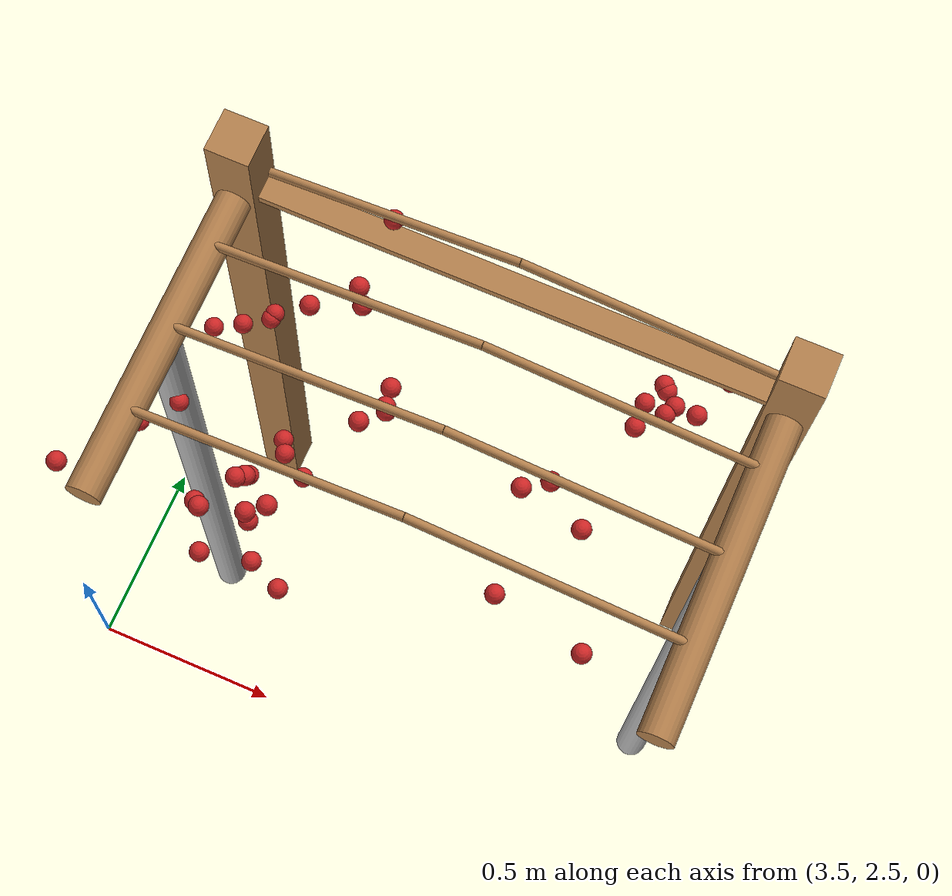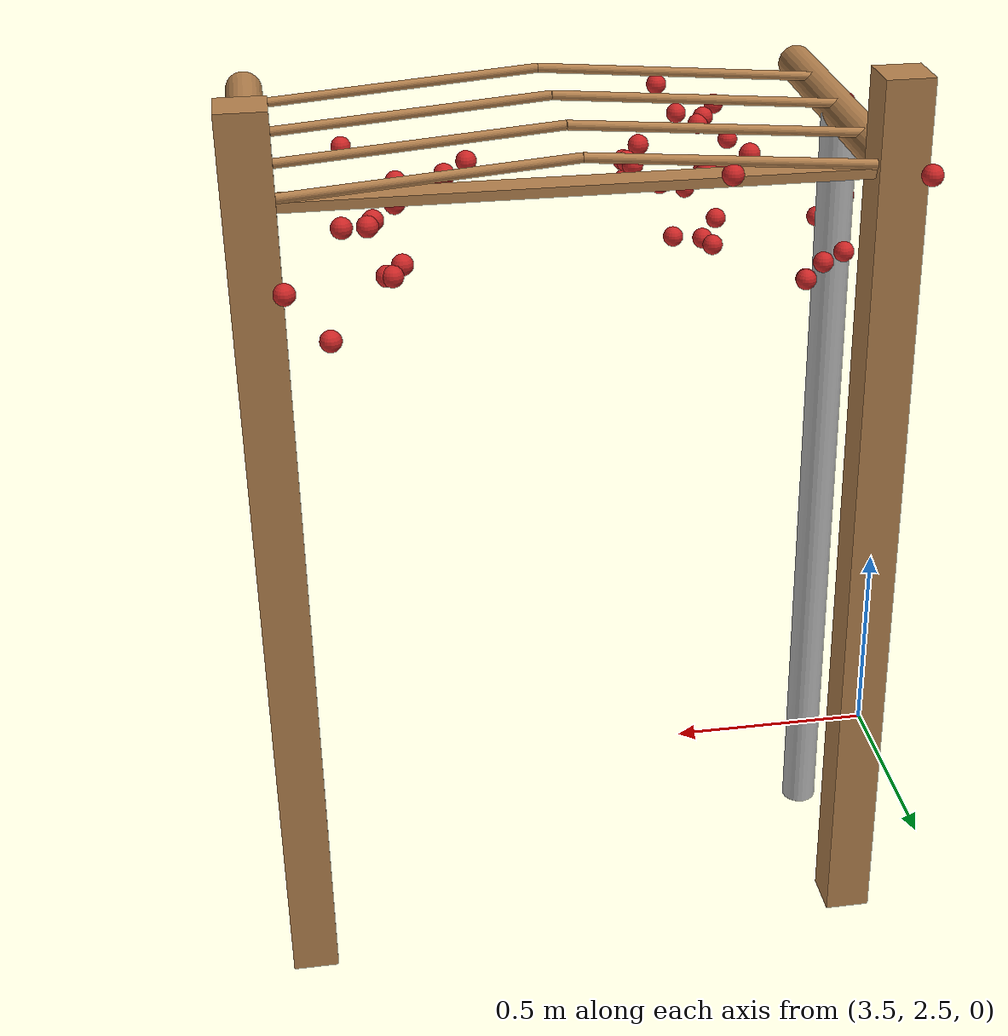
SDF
<sdf version="1.4">
 <model name="pergola">
  <include><name>post_25</name><pose>3.75 3.2 0 0 0 0</pose><uri>model://post</uri></include>
  <include><name>post_32</name><pose>5.0 3.2 0 0 0 0</pose><uri>model://post</uri></include>
  <link name="beam_25">
   <pose>4.375 3.2 1.81 0 0 0</pose>
   <collision name="collision"><geometry><box><size>1.25 0.06 0.02</size></box></geometry></collision>
   <visual name="visual">
    <geometry><box><size>1.25 0.06 0.02</size></box></geometry>
    <material><script><name>Gazebo/Wood</name></script></material>
   </visual>
   <inertial>
    <mass>5</mass>
    <inertia>
     <ixx>0.0016666666666666668</ixx>
     <ixy>0.0</ixy>
     <ixz>0.0</ixz>
     <iyy>0.6525416666666667</iyy>
     <iyz>0.0</iyz>
     <izz>0.6512083333333333</izz>
    </inertia>
   </inertial>
  </link>
  <include>
   <name>tree_21</name>
   <pose>3.75 2.8000000000000003 0 0 0 0</pose>
   <uri>model://tree_trunk</uri>
  </include>
  <include>
   <name>tree_27</name>
   <pose>5.0 2.8000000000000003 0 0 0 0</pose>
   <uri>model://tree_trunk</uri>
  </include>
  <link name="baseBranch_21">
   <pose>3.75 2.8000000000000003 1.8 1.5707963267948966 0 0</pose>
   <collision name="collision">
    <geometry><cylinder><radius>0.04</radius><length>0.74</length></cylinder></geometry>
   </collision>
   <visual name="visual">
    <geometry><cylinder><radius>0.04</radius><length>0.74</length></cylinder></geometry>
    <material><script><name>Gazebo/WoodFloor</name></script></material>
   </visual>
   <inertial>
    <mass>10</mass>
    <inertia>
     <ixx>0.4603333333333333</ixx>
     <ixy>0.0</ixy>
     <ixz>0.0</ixz>
     <iyy>0.4603333333333333</iyy>
     <iyz>0.0</iyz>
     <izz>0.008</izz>
    </inertia>
   </inertial>
  </link>
  <link name="baseBranch_27">
   <pose>5.0 2.8000000000000003 1.8 1.5707963267948966 0 0</pose>
   <collision name="collision">
    <geometry><cylinder><radius>0.04</radius><length>0.74</length></cylinder></geometry>
   </collision>
   <visual name="visual">
    <geometry><cylinder><radius>0.04</radius><length>0.74</length></cylinder></geometry>
    <material><script><name>Gazebo/WoodFloor</name></script></material>
   </visual>
   <inertial>
    <mass>10</mass>
    <inertia>
     <ixx>0.4603333333333333</ixx>
     <ixy>0.0</ixy>
     <ixz>0.0</ixz>
     <iyy>0.4603333333333333</iyy>
     <iyz>0.0</iyz>
     <izz>0.008</izz>
    </inertia>
   </inertial>
  </link>
  <link name="vine_170">
   <pose>4.0625 2.63 1.85 0 1.4909663410826592 0</pose>
   <collision name="collision">
    <geometry><cylinder><radius>0.01</radius><length>0.6269968101992226</length></cylinder></geometry>
   </collision>
   <visual name="visual">
    <geometry><cylinder><radius>0.01</radius><length>0.6269968101992226</length></cylinder></geometry>
    <material><script><name>Gazebo/WoodFloor</name></script></material>
   </visual>
   <inertial>
    <mass>5</mass>
    <inertia>
     <ixx>0.1639270833333333</ixx>
     <ixy>0.0</ixy>
     <ixz>0.0</ixz>
     <iyy>0.1639270833333333</iyy>
     <iyz>0.0</iyz>
     <izz>0.00025</izz>
    </inertia>
   </inertial>
  </link>
  <link name="vine_171">
   <pose>4.6875 2.63 1.85 0 -1.4909663410826592 0</pose>
   <collision name="collision">
    <geometry><cylinder><radius>0.01</radius><length>0.6269968101992226</length></cylinder></geometry>
   </collision>
   <visual name="visual">
    <geometry><cylinder><radius>0.01</radius><length>0.6269968101992226</length></cylinder></geometry>
    <material><script><name>Gazebo/WoodFloor</name></script></material>
   </visual>
   <inertial>
    <mass>5</mass>
    <inertia>
     <ixx>0.1639270833333333</ixx>
     <ixy>0.0</ixy>
     <ixz>0.0</ixz>
     <iyy>0.1639270833333333</iyy>
     <iyz>0.0</iyz>
     <izz>0.00025</izz>
    </inertia>
   </inertial>
  </link>
  <link name="vine_172">
   <pose>4.0625 2.83 1.85 0 1.4909663410826592 0</pose>
   <collision name="collision">
    <geometry><cylinder><radius>0.01</radius><length>0.6269968101992226</length></cylinder></geometry>
   </collision>
   <visual name="visual">
    <geometry><cylinder><radius>0.01</radius><length>0.6269968101992226</length></cylinder></geometry>
    <material><script><name>Gazebo/WoodFloor</name></script></material>
   </visual>
   <inertial>
    <mass>5</mass>
    <inertia>
     <ixx>0.1639270833333333</ixx>
     <ixy>0.0</ixy>
     <ixz>0.0</ixz>
     <iyy>0.1639270833333333</iyy>
     <iyz>0.0</iyz>
     <izz>0.00025</izz>
    </inertia>
   </inertial>
  </link>
  <link name="vine_173">
   <pose>4.6875 2.83 1.85 0 -1.4909663410826592 0</pose>
   <collision name="collision">
    <geometry><cylinder><radius>0.01</radius><length>0.6269968101992226</length></cylinder></geometry>
   </collision>
   <visual name="visual">
    <geometry><cylinder><radius>0.01</radius><length>0.6269968101992226</length></cylinder></geometry>
    <material><script><name>Gazebo/WoodFloor</name></script></material>
   </visual>
   <inertial>
    <mass>5</mass>
    <inertia>
     <ixx>0.1639270833333333</ixx>
     <ixy>0.0</ixy>
     <ixz>0.0</ixz>
     <iyy>0.1639270833333333</iyy>
     <iyz>0.0</iyz>
     <izz>0.00025</izz>
    </inertia>
   </inertial>
  </link>
  <link name="vine_174">
   <pose>4.0625 3.03 1.85 0 1.4909663410826592 0</pose>
   <collision name="collision">
    <geometry><cylinder><radius>0.01</radius><length>0.6269968101992226</length></cylinder></geometry>
   </collision>
   <visual name="visual">
    <geometry><cylinder><radius>0.01</radius><length>0.6269968101992226</length></cylinder></geometry>
    <material><script><name>Gazebo/WoodFloor</name></script></material>
   </visual>
   <inertial>
    <mass>5</mass>
    <inertia>
     <ixx>0.1639270833333333</ixx>
     <ixy>0.0</ixy>
     <ixz>0.0</ixz>
     <iyy>0.1639270833333333</iyy>
     <iyz>0.0</iyz>
     <izz>0.00025</izz>
    </inertia>
   </inertial>
  </link>
  <link name="vine_175">
   <pose>4.6875 3.03 1.85 0 -1.4909663410826592 0</pose>
   <collision name="collision">
    <geometry><cylinder><radius>0.01</radius><length>0.6269968101992226</length></cylinder></geometry>
   </collision>
   <visual name="visual">
    <geometry><cylinder><radius>0.01</radius><length>0.6269968101992226</length></cylinder></geometry>
    <material><script><name>Gazebo/WoodFloor</name></script></material>
   </visual>
   <inertial>
    <mass>5</mass>
    <inertia>
     <ixx>0.1639270833333333</ixx>
     <ixy>0.0</ixy>
     <ixz>0.0</ixz>
     <iyy>0.1639270833333333</iyy>
     <iyz>0.0</iyz>
     <izz>0.00025</izz>
    </inertia>
   </inertial>
  </link>
  <link name="vine_176">
   <pose>4.0625 3.23 1.85 0 1.4909663410826592 0</pose>
   <collision name="collision">
    <geometry><cylinder><radius>0.01</radius><length>0.6269968101992226</length></cylinder></geometry>
   </collision>
   <visual name="visual">
    <geometry><cylinder><radius>0.01</radius><length>0.6269968101992226</length></cylinder></geometry>
    <material><script><name>Gazebo/WoodFloor</name></script></material>
   </visual>
   <inertial>
    <mass>5</mass>
    <inertia>
     <ixx>0.1639270833333333</ixx>
     <ixy>0.0</ixy>
     <ixz>0.0</ixz>
     <iyy>0.1639270833333333</iyy>
     <iyz>0.0</iyz>
     <izz>0.00025</izz>
    </inertia>
   </inertial>
  </link>
  <link name="vine_177">
   <pose>4.6875 3.23 1.85 0 -1.4909663410826592 0</pose>
   <collision name="collision">
    <geometry><cylinder><radius>0.01</radius><length>0.6269968101992226</length></cylinder></geometry>
   </collision>
   <visual name="visual">
    <geometry><cylinder><radius>0.01</radius><length>0.6269968101992226</length></cylinder></geometry>
    <material><script><name>Gazebo/WoodFloor</name></script></material>
   </visual>
   <inertial>
    <mass>5</mass>
    <inertia>
     <ixx>0.1639270833333333</ixx>
     <ixy>0.0</ixy>
     <ixz>0.0</ixz>
     <iyy>0.1639270833333333</iyy>
     <iyz>0.0</iyz>
     <izz>0.00025</izz>
    </inertia>
   </inertial>
  </link>
  <link name="fruit_15">
   <pose>4.153974145615914 2.4647961014304403 1.5570192149199134 0 0 0</pose>
   <collision name="fruit_collision_15"><geometry><sphere><radius>0.022</radius></sphere></geometry></collision>
   <visual name="visual">
    <geometry><sphere><radius>0.022</radius></sphere></geometry>
    <material><script><name>Gazebo/Red</name></script></material>
   </visual>
   <inertial>
    <mass>0.05</mass>
    <inertia>
     <ixx>9.679999999999999e-06</ixx>
     <ixy>0.0</ixy>
     <ixz>0.0</ixz>
     <iyy>9.679999999999999e-06</iyy>
     <iyz>0.0</iyz>
     <izz>9.679999999999999e-06</izz>
    </inertia>
   </inertial>
   <sensor name="fruit_contact_15" type="contact">
    <plugin name="contact_plugin_15" filename="libcontact_plugin.so"/>
    <contact><collision>fruit_collision_15</collision><topic>fruit_contact_topic_15</topic></contact>
   </sensor>
  </link>
  <link name="fruit_16">
   <pose>4.947887285372615 3.2613518781214577 1.6508108001480943 0 0 0</pose>
   <collision name="fruit_collision_16"><geometry><sphere><radius>0.022</radius></sphere></geometry></collision>
   <visual name="visual">
    <geometry><sphere><radius>0.022</radius></sphere></geometry>
    <material><script><name>Gazebo/Red</name></script></material>
   </visual>
   <inertial>
    <mass>0.05</mass>
    <inertia>
     <ixx>9.679999999999999e-06</ixx>
     <ixy>0.0</ixy>
     <ixz>0.0</ixz>
     <iyy>9.679999999999999e-06</iyy>
     <iyz>0.0</iyz>
     <izz>9.679999999999999e-06</izz>
    </inertia>
   </inertial>
   <sensor name="fruit_contact_16" type="contact">
    <plugin name="contact_plugin_16" filename="libcontact_plugin.so"/>
    <contact><collision>fruit_collision_16</collision><topic>fruit_contact_topic_16</topic></contact>
   </sensor>
  </link>
  <link name="fruit_23">
   <pose>3.769958260053691 2.9566665008749893 1.5420966154425164 0 0 0</pose>
   <collision name="fruit_collision_23"><geometry><sphere><radius>0.022</radius></sphere></geometry></collision>
   <visual name="visual">
    <geometry><sphere><radius>0.022</radius></sphere></geometry>
    <material><script><name>Gazebo/Red</name></script></material>
   </visual>
   <inertial>
    <mass>0.05</mass>
    <inertia>
     <ixx>9.679999999999999e-06</ixx>
     <ixy>0.0</ixy>
     <ixz>0.0</ixz>
     <iyy>9.679999999999999e-06</iyy>
     <iyz>0.0</iyz>
     <izz>9.679999999999999e-06</izz>
    </inertia>
   </inertial>
   <sensor name="fruit_contact_23" type="contact">
    <plugin name="contact_plugin_23" filename="libcontact_plugin.so"/>
    <contact><collision>fruit_collision_23</collision><topic>fruit_contact_topic_23</topic></contact>
   </sensor>
  </link>
  <link name="fruit_47">
   <pose>4.085921867096613 3.2352788916900916 1.8261807245186623 0 0 0</pose>
   <collision name="fruit_collision_47"><geometry><sphere><radius>0.022</radius></sphere></geometry></collision>
   <visual name="visual">
    <geometry><sphere><radius>0.022</radius></sphere></geometry>
    <material><script><name>Gazebo/Red</name></script></material>
   </visual>
   <inertial>
    <mass>0.05</mass>
    <inertia>
     <ixx>9.679999999999999e-06</ixx>
     <ixy>0.0</ixy>
     <ixz>0.0</ixz>
     <iyy>9.679999999999999e-06</iyy>
     <iyz>0.0</iyz>
     <izz>9.679999999999999e-06</izz>
    </inertia>
   </inertial>
   <sensor name="fruit_contact_47" type="contact">
    <plugin name="contact_plugin_47" filename="libcontact_plugin.so"/>
    <contact><collision>fruit_collision_47</collision><topic>fruit_contact_topic_47</topic></contact>
   </sensor>
  </link>
  <link name="fruit_48">
   <pose>3.985060901359649 2.6782350594381543 1.5287078367764844 0 0 0</pose>
   <collision name="fruit_collision_48"><geometry><sphere><radius>0.022</radius></sphere></geometry></collision>
   <visual name="visual">
    <geometry><sphere><radius>0.022</radius></sphere></geometry>
    <material><script><name>Gazebo/Red</name></script></material>
   </visual>
   <inertial>
    <mass>0.05</mass>
    <inertia>
     <ixx>9.679999999999999e-06</ixx>
     <ixy>0.0</ixy>
     <ixz>0.0</ixz>
     <iyy>9.679999999999999e-06</iyy>
     <iyz>0.0</iyz>
     <izz>9.679999999999999e-06</izz>
    </inertia>
   </inertial>
   <sensor name="fruit_contact_48" type="contact">
    <plugin name="contact_plugin_48" filename="libcontact_plugin.so"/>
    <contact><collision>fruit_collision_48</collision><topic>fruit_contact_topic_48</topic></contact>
   </sensor>
  </link>
  <link name="fruit_63">
   <pose>4.190108826426233 2.8160257787695047 1.7543500716443443 0 0 0</pose>
   <collision name="fruit_collision_63"><geometry><sphere><radius>0.022</radius></sphere></geometry></collision>
   <visual name="visual">
    <geometry><sphere><radius>0.022</radius></sphere></geometry>
    <material><script><name>Gazebo/Red</name></script></material>
   </visual>
   <inertial>
    <mass>0.05</mass>
    <inertia>
     <ixx>9.679999999999999e-06</ixx>
     <ixy>0.0</ixy>
     <ixz>0.0</ixz>
     <iyy>9.679999999999999e-06</iyy>
     <iyz>0.0</iyz>
     <izz>9.679999999999999e-06</izz>
    </inertia>
   </inertial>
   <sensor name="fruit_contact_63" type="contact">
    <plugin name="contact_plugin_63" filename="libcontact_plugin.so"/>
    <contact><collision>fruit_collision_63</collision><topic>fruit_contact_topic_63</topic></contact>
   </sensor>
  </link>
  <link name="fruit_67">
   <pose>4.868306843552665 3.286692308941063 1.5609184338838362 0 0 0</pose>
   <collision name="fruit_collision_67"><geometry><sphere><radius>0.022</radius></sphere></geometry></collision>
   <visual name="visual">
    <geometry><sphere><radius>0.022</radius></sphere></geometry>
    <material><script><name>Gazebo/Red</name></script></material>
   </visual>
   <inertial>
    <mass>0.05</mass>
    <inertia>
     <ixx>9.679999999999999e-06</ixx>
     <ixy>0.0</ixy>
     <ixz>0.0</ixz>
     <iyy>9.679999999999999e-06</iyy>
     <iyz>0.0</iyz>
     <izz>9.679999999999999e-06</izz>
    </inertia>
   </inertial>
   <sensor name="fruit_contact_67" type="contact">
    <plugin name="contact_plugin_67" filename="libcontact_plugin.so"/>
    <contact><collision>fruit_collision_67</collision><topic>fruit_contact_topic_67</topic></contact>
   </sensor>
  </link>
  <link name="fruit_70">
   <pose>4.58550626388735 2.62021864893133 1.6304318869775793 0 0 0</pose>
   <collision name="fruit_collision_70"><geometry><sphere><radius>0.022</radius></sphere></geometry></collision>
   <visual name="visual">
    <geometry><sphere><radius>0.022</radius></sphere></geometry>
    <material><script><name>Gazebo/Red</name></script></material>
   </visual>
   <inertial>
    <mass>0.05</mass>
    <inertia>
     <ixx>9.679999999999999e-06</ixx>
     <ixy>0.0</ixy>
     <ixz>0.0</ixz>
     <iyy>9.679999999999999e-06</iyy>
     <iyz>0.0</iyz>
     <izz>9.679999999999999e-06</izz>
    </inertia>
   </inertial>
   <sensor name="fruit_contact_70" type="contact">
    <plugin name="contact_plugin_70" filename="libcontact_plugin.so"/>
    <contact><collision>fruit_collision_70</collision><topic>fruit_contact_topic_70</topic></contact>
   </sensor>
  </link>
  <link name="fruit_75">
   <pose>4.800823491438611 2.557985805155685 1.7004761122574377 0 0 0</pose>
   <collision name="fruit_collision_75"><geometry><sphere><radius>0.022</radius></sphere></geometry></collision>
   <visual name="visual">
    <geometry><sphere><radius>0.022</radius></sphere></geometry>
    <material><script><name>Gazebo/Red</name></script></material>
   </visual>
   <inertial>
    <mass>0.05</mass>
    <inertia>
     <ixx>9.679999999999999e-06</ixx>
     <ixy>0.0</ixy>
     <ixz>0.0</ixz>
     <iyy>9.679999999999999e-06</iyy>
     <iyz>0.0</iyz>
     <izz>9.679999999999999e-06</izz>
    </inertia>
   </inertial>
   <sensor name="fruit_contact_75" type="contact">
    <plugin name="contact_plugin_75" filename="libcontact_plugin.so"/>
    <contact><collision>fruit_collision_75</collision><topic>fruit_contact_topic_75</topic></contact>
   </sensor>
  </link>
  <link name="fruit_96">
   <pose>3.6973379364168073 3.2621637504035226 1.8113002603726003 0 0 0</pose>
   <collision name="fruit_collision_96"><geometry><sphere><radius>0.022</radius></sphere></geometry></collision>
   <visual name="visual">
    <geometry><sphere><radius>0.022</radius></sphere></geometry>
    <material><script><name>Gazebo/Red</name></script></material>
   </visual>
   <inertial>
    <mass>0.05</mass>
    <inertia>
     <ixx>9.679999999999999e-06</ixx>
     <ixy>0.0</ixy>
     <ixz>0.0</ixz>
     <iyy>9.679999999999999e-06</iyy>
     <iyz>0.0</iyz>
     <izz>9.679999999999999e-06</izz>
    </inertia>
   </inertial>
   <sensor name="fruit_contact_96" type="contact">
    <plugin name="contact_plugin_96" filename="libcontact_plugin.so"/>
    <contact><collision>fruit_collision_96</collision><topic>fruit_contact_topic_96</topic></contact>
   </sensor>
  </link>
  <link name="fruit_98">
   <pose>3.8241386000695328 2.9917727721439977 1.5356091872130102 0 0 0</pose>
   <collision name="fruit_collision_98"><geometry><sphere><radius>0.022</radius></sphere></geometry></collision>
   <visual name="visual">
    <geometry><sphere><radius>0.022</radius></sphere></geometry>
    <material><script><name>Gazebo/Red</name></script></material>
   </visual>
   <inertial>
    <mass>0.05</mass>
    <inertia>
     <ixx>9.679999999999999e-06</ixx>
     <ixy>0.0</ixy>
     <ixz>0.0</ixz>
     <iyy>9.679999999999999e-06</iyy>
     <iyz>0.0</iyz>
     <izz>9.679999999999999e-06</izz>
    </inertia>
   </inertial>
   <sensor name="fruit_contact_98" type="contact">
    <plugin name="contact_plugin_98" filename="libcontact_plugin.so"/>
    <contact><collision>fruit_collision_98</collision><topic>fruit_contact_topic_98</topic></contact>
   </sensor>
  </link>
  <link name="fruit_162">
   <pose>3.931914363310737 2.5449849307775714 1.6654063256373155 0 0 0</pose>
   <collision name="fruit_collision_162"><geometry><sphere><radius>0.022</radius></sphere></geometry></collision>
   <visual name="visual">
    <geometry><sphere><radius>0.022</radius></sphere></geometry>
    <material><script><name>Gazebo/Red</name></script></material>
   </visual>
   <inertial>
    <mass>0.05</mass>
    <inertia>
     <ixx>9.679999999999999e-06</ixx>
     <ixy>0.0</ixy>
     <ixz>0.0</ixz>
     <iyy>9.679999999999999e-06</iyy>
     <iyz>0.0</iyz>
     <izz>9.679999999999999e-06</izz>
    </inertia>
   </inertial>
   <sensor name="fruit_contact_162" type="contact">
    <plugin name="contact_plugin_162" filename="libcontact_plugin.so"/>
    <contact><collision>fruit_collision_162</collision><topic>fruit_contact_topic_162</topic></contact>
   </sensor>
  </link>
  <link name="fruit_188">
   <pose>3.9612563971222565 2.519337247793989 1.74103178864471 0 0 0</pose>
   <collision name="fruit_collision_188"><geometry><sphere><radius>0.022</radius></sphere></geometry></collision>
   <visual name="visual">
    <geometry><sphere><radius>0.022</radius></sphere></geometry>
    <material><script><name>Gazebo/Red</name></script></material>
   </visual>
   <inertial>
    <mass>0.05</mass>
    <inertia>
     <ixx>9.679999999999999e-06</ixx>
     <ixy>0.0</ixy>
     <ixz>0.0</ixz>
     <iyy>9.679999999999999e-06</iyy>
     <iyz>0.0</iyz>
     <izz>9.679999999999999e-06</izz>
    </inertia>
   </inertial>
   <sensor name="fruit_contact_188" type="contact">
    <plugin name="contact_plugin_188" filename="libcontact_plugin.so"/>
    <contact><collision>fruit_collision_188</collision><topic>fruit_contact_topic_188</topic></contact>
   </sensor>
  </link>
  <link name="fruit_198">
   <pose>3.683732443808809 2.6589103648153545 1.5562919224913643 0 0 0</pose>
   <collision name="fruit_collision_198"><geometry><sphere><radius>0.022</radius></sphere></geometry></collision>
   <visual name="visual">
    <geometry><sphere><radius>0.022</radius></sphere></geometry>
    <material><script><name>Gazebo/Red</name></script></material>
   </visual>
   <inertial>
    <mass>0.05</mass>
    <inertia>
     <ixx>9.679999999999999e-06</ixx>
     <ixy>0.0</ixy>
     <ixz>0.0</ixz>
     <iyy>9.679999999999999e-06</iyy>
     <iyz>0.0</iyz>
     <izz>9.679999999999999e-06</izz>
    </inertia>
   </inertial>
   <sensor name="fruit_contact_198" type="contact">
    <plugin name="contact_plugin_198" filename="libcontact_plugin.so"/>
    <contact><collision>fruit_collision_198</collision><topic>fruit_contact_topic_198</topic></contact>
   </sensor>
  </link>
  <link name="fruit_227">
   <pose>4.716393779764636 3.1344962548093145 1.6453579416973239 0 0 0</pose>
   <collision name="fruit_collision_227"><geometry><sphere><radius>0.022</radius></sphere></geometry></collision>
   <visual name="visual">
    <geometry><sphere><radius>0.022</radius></sphere></geometry>
    <material><script><name>Gazebo/Red</name></script></material>
   </visual>
   <inertial>
    <mass>0.05</mass>
    <inertia>
     <ixx>9.679999999999999e-06</ixx>
     <ixy>0.0</ixy>
     <ixz>0.0</ixz>
     <iyy>9.679999999999999e-06</iyy>
     <iyz>0.0</iyz>
     <izz>9.679999999999999e-06</izz>
    </inertia>
   </inertial>
   <sensor name="fruit_contact_227" type="contact">
    <plugin name="contact_plugin_227" filename="libcontact_plugin.so"/>
    <contact><collision>fruit_collision_227</collision><topic>fruit_contact_topic_227</topic></contact>
   </sensor>
  </link>
  <link name="fruit_239">
   <pose>3.9952924113561403 3.0012560667845882 1.7850177441098132 0 0 0</pose>
   <collision name="fruit_collision_239"><geometry><sphere><radius>0.022</radius></sphere></geometry></collision>
   <visual name="visual">
    <geometry><sphere><radius>0.022</radius></sphere></geometry>
    <material><script><name>Gazebo/Red</name></script></material>
   </visual>
   <inertial>
    <mass>0.05</mass>
    <inertia>
     <ixx>9.679999999999999e-06</ixx>
     <ixy>0.0</ixy>
     <ixz>0.0</ixz>
     <iyy>9.679999999999999e-06</iyy>
     <iyz>0.0</iyz>
     <izz>9.679999999999999e-06</izz>
    </inertia>
   </inertial>
   <sensor name="fruit_contact_239" type="contact">
    <plugin name="contact_plugin_239" filename="libcontact_plugin.so"/>
    <contact><collision>fruit_collision_239</collision><topic>fruit_contact_topic_239</topic></contact>
   </sensor>
  </link>
  <link name="fruit_245">
   <pose>3.969435417967767 2.46830315471261 1.5725275727010544 0 0 0</pose>
   <collision name="fruit_collision_245"><geometry><sphere><radius>0.022</radius></sphere></geometry></collision>
   <visual name="visual">
    <geometry><sphere><radius>0.022</radius></sphere></geometry>
    <material><script><name>Gazebo/Red</name></script></material>
   </visual>
   <inertial>
    <mass>0.05</mass>
    <inertia>
     <ixx>9.679999999999999e-06</ixx>
     <ixy>0.0</ixy>
     <ixz>0.0</ixz>
     <iyy>9.679999999999999e-06</iyy>
     <iyz>0.0</iyz>
     <izz>9.679999999999999e-06</izz>
    </inertia>
   </inertial>
   <sensor name="fruit_contact_245" type="contact">
    <plugin name="contact_plugin_245" filename="libcontact_plugin.so"/>
    <contact><collision>fruit_collision_245</collision><topic>fruit_contact_topic_245</topic></contact>
   </sensor>
  </link>
  <link name="fruit_273">
   <pose>4.554369738975261 2.82251186003027 1.7421414165626377 0 0 0</pose>
   <collision name="fruit_collision_273"><geometry><sphere><radius>0.022</radius></sphere></geometry></collision>
   <visual name="visual">
    <geometry><sphere><radius>0.022</radius></sphere></geometry>
    <material><script><name>Gazebo/Red</name></script></material>
   </visual>
   <inertial>
    <mass>0.05</mass>
    <inertia>
     <ixx>9.679999999999999e-06</ixx>
     <ixy>0.0</ixy>
     <ixz>0.0</ixz>
     <iyy>9.679999999999999e-06</iyy>
     <iyz>0.0</iyz>
     <izz>9.679999999999999e-06</izz>
    </inertia>
   </inertial>
   <sensor name="fruit_contact_273" type="contact">
    <plugin name="contact_plugin_273" filename="libcontact_plugin.so"/>
    <contact><collision>fruit_collision_273</collision><topic>fruit_contact_topic_273</topic></contact>
   </sensor>
  </link>
  <link name="fruit_296">
   <pose>4.7199410814098925 3.0416464564919443 1.7383686406291539 0 0 0</pose>
   <collision name="fruit_collision_296"><geometry><sphere><radius>0.022</radius></sphere></geometry></collision>
   <visual name="visual">
    <geometry><sphere><radius>0.022</radius></sphere></geometry>
    <material><script><name>Gazebo/Red</name></script></material>
   </visual>
   <inertial>
    <mass>0.05</mass>
    <inertia>
     <ixx>9.679999999999999e-06</ixx>
     <ixy>0.0</ixy>
     <ixz>0.0</ixz>
     <iyy>9.679999999999999e-06</iyy>
     <iyz>0.0</iyz>
     <izz>9.679999999999999e-06</izz>
    </inertia>
   </inertial>
   <sensor name="fruit_contact_296" type="contact">
    <plugin name="contact_plugin_296" filename="libcontact_plugin.so"/>
    <contact><collision>fruit_collision_296</collision><topic>fruit_contact_topic_296</topic></contact>
   </sensor>
  </link>
  <link name="fruit_340">
   <pose>4.701112882772964 2.801730604721148 1.6999907996101233 0 0 0</pose>
   <collision name="fruit_collision_340"><geometry><sphere><radius>0.022</radius></sphere></geometry></collision>
   <visual name="visual">
    <geometry><sphere><radius>0.022</radius></sphere></geometry>
    <material><script><name>Gazebo/Red</name></script></material>
   </visual>
   <inertial>
    <mass>0.05</mass>
    <inertia>
     <ixx>9.679999999999999e-06</ixx>
     <ixy>0.0</ixy>
     <ixz>0.0</ixz>
     <iyy>9.679999999999999e-06</iyy>
     <iyz>0.0</iyz>
     <izz>9.679999999999999e-06</izz>
    </inertia>
   </inertial>
   <sensor name="fruit_contact_340" type="contact">
    <plugin name="contact_plugin_340" filename="libcontact_plugin.so"/>
    <contact><collision>fruit_collision_340</collision><topic>fruit_contact_topic_340</topic></contact>
   </sensor>
  </link>
  <link name="fruit_353">
   <pose>4.739784273173576 3.18977635105312 1.6445325759214748 0 0 0</pose>
   <collision name="fruit_collision_353"><geometry><sphere><radius>0.022</radius></sphere></geometry></collision>
   <visual name="visual">
    <geometry><sphere><radius>0.022</radius></sphere></geometry>
    <material><script><name>Gazebo/Red</name></script></material>
   </visual>
   <inertial>
    <mass>0.05</mass>
    <inertia>
     <ixx>9.679999999999999e-06</ixx>
     <ixy>0.0</ixy>
     <ixz>0.0</ixz>
     <iyy>9.679999999999999e-06</iyy>
     <iyz>0.0</iyz>
     <izz>9.679999999999999e-06</izz>
    </inertia>
   </inertial>
   <sensor name="fruit_contact_353" type="contact">
    <plugin name="contact_plugin_353" filename="libcontact_plugin.so"/>
    <contact><collision>fruit_collision_353</collision><topic>fruit_contact_topic_353</topic></contact>
   </sensor>
  </link>
  <link name="fruit_354">
   <pose>4.779314192577805 3.122582182788103 1.7234816379467466 0 0 0</pose>
   <collision name="fruit_collision_354"><geometry><sphere><radius>0.022</radius></sphere></geometry></collision>
   <visual name="visual">
    <geometry><sphere><radius>0.022</radius></sphere></geometry>
    <material><script><name>Gazebo/Red</name></script></material>
   </visual>
   <inertial>
    <mass>0.05</mass>
    <inertia>
     <ixx>9.679999999999999e-06</ixx>
     <ixy>0.0</ixy>
     <ixz>0.0</ixz>
     <iyy>9.679999999999999e-06</iyy>
     <iyz>0.0</iyz>
     <izz>9.679999999999999e-06</izz>
    </inertia>
   </inertial>
   <sensor name="fruit_contact_354" type="contact">
    <plugin name="contact_plugin_354" filename="libcontact_plugin.so"/>
    <contact><collision>fruit_collision_354</collision><topic>fruit_contact_topic_354</topic></contact>
   </sensor>
  </link>
  <link name="fruit_358">
   <pose>4.220003837778253 2.914131432692346 1.7451699218979917 0 0 0</pose>
   <collision name="fruit_collision_358"><geometry><sphere><radius>0.022</radius></sphere></geometry></collision>
   <visual name="visual">
    <geometry><sphere><radius>0.022</radius></sphere></geometry>
    <material><script><name>Gazebo/Red</name></script></material>
   </visual>
   <inertial>
    <mass>0.05</mass>
    <inertia>
     <ixx>9.679999999999999e-06</ixx>
     <ixy>0.0</ixy>
     <ixz>0.0</ixz>
     <iyy>9.679999999999999e-06</iyy>
     <iyz>0.0</iyz>
     <izz>9.679999999999999e-06</izz>
    </inertia>
   </inertial>
   <sensor name="fruit_contact_358" type="contact">
    <plugin name="contact_plugin_358" filename="libcontact_plugin.so"/>
    <contact><collision>fruit_collision_358</collision><topic>fruit_contact_topic_358</topic></contact>
   </sensor>
  </link>
  <link name="fruit_368">
   <pose>4.004529207631626 2.606921927791891 1.7401367360210809 0 0 0</pose>
   <collision name="fruit_collision_368"><geometry><sphere><radius>0.022</radius></sphere></geometry></collision>
   <visual name="visual">
    <geometry><sphere><radius>0.022</radius></sphere></geometry>
    <material><script><name>Gazebo/Red</name></script></material>
   </visual>
   <inertial>
    <mass>0.05</mass>
    <inertia>
     <ixx>9.679999999999999e-06</ixx>
     <ixy>0.0</ixy>
     <ixz>0.0</ixz>
     <iyy>9.679999999999999e-06</iyy>
     <iyz>0.0</iyz>
     <izz>9.679999999999999e-06</izz>
    </inertia>
   </inertial>
   <sensor name="fruit_contact_368" type="contact">
    <plugin name="contact_plugin_368" filename="libcontact_plugin.so"/>
    <contact><collision>fruit_collision_368</collision><topic>fruit_contact_topic_368</topic></contact>
   </sensor>
  </link>
  <link name="fruit_387">
   <pose>4.829339754421172 3.122436184145361 1.7235217078728478 0 0 0</pose>
   <collision name="fruit_collision_387"><geometry><sphere><radius>0.022</radius></sphere></geometry></collision>
   <visual name="visual">
    <geometry><sphere><radius>0.022</radius></sphere></geometry>
    <material><script><name>Gazebo/Red</name></script></material>
   </visual>
   <inertial>
    <mass>0.05</mass>
    <inertia>
     <ixx>9.679999999999999e-06</ixx>
     <ixy>0.0</ixy>
     <ixz>0.0</ixz>
     <iyy>9.679999999999999e-06</iyy>
     <iyz>0.0</iyz>
     <izz>9.679999999999999e-06</izz>
    </inertia>
   </inertial>
   <sensor name="fruit_contact_387" type="contact">
    <plugin name="contact_plugin_387" filename="libcontact_plugin.so"/>
    <contact><collision>fruit_collision_387</collision><topic>fruit_contact_topic_387</topic></contact>
   </sensor>
  </link>
  <link name="fruit_415">
   <pose>4.018790662514093 2.6206342233241946 1.7295280818400607 0 0 0</pose>
   <collision name="fruit_collision_415"><geometry><sphere><radius>0.022</radius></sphere></geometry></collision>
   <visual name="visual">
    <geometry><sphere><radius>0.022</radius></sphere></geometry>
    <material><script><name>Gazebo/Red</name></script></material>
   </visual>
   <inertial>
    <mass>0.05</mass>
    <inertia>
     <ixx>9.679999999999999e-06</ixx>
     <ixy>0.0</ixy>
     <ixz>0.0</ixz>
     <iyy>9.679999999999999e-06</iyy>
     <iyz>0.0</iyz>
     <izz>9.679999999999999e-06</izz>
    </inertia>
   </inertial>
   <sensor name="fruit_contact_415" type="contact">
    <plugin name="contact_plugin_415" filename="libcontact_plugin.so"/>
    <contact><collision>fruit_collision_415</collision><topic>fruit_contact_topic_415</topic></contact>
   </sensor>
  </link>
  <link name="fruit_430">
   <pose>4.034483739622351 2.574126766542938 1.5658274859671852 0 0 0</pose>
   <collision name="fruit_collision_430"><geometry><sphere><radius>0.022</radius></sphere></geometry></collision>
   <visual name="visual">
    <geometry><sphere><radius>0.022</radius></sphere></geometry>
    <material><script><name>Gazebo/Red</name></script></material>
   </visual>
   <inertial>
    <mass>0.05</mass>
    <inertia>
     <ixx>9.679999999999999e-06</ixx>
     <ixy>0.0</ixy>
     <ixz>0.0</ixz>
     <iyy>9.679999999999999e-06</iyy>
     <iyz>0.0</iyz>
     <izz>9.679999999999999e-06</izz>
    </inertia>
   </inertial>
   <sensor name="fruit_contact_430" type="contact">
    <plugin name="contact_plugin_430" filename="libcontact_plugin.so"/>
    <contact><collision>fruit_collision_430</collision><topic>fruit_contact_topic_430</topic></contact>
   </sensor>
  </link>
  <link name="fruit_439">
   <pose>4.750005270298141 3.180243937792153 1.6423983651773988 0 0 0</pose>
   <collision name="fruit_collision_439"><geometry><sphere><radius>0.022</radius></sphere></geometry></collision>
   <visual name="visual">
    <geometry><sphere><radius>0.022</radius></sphere></geometry>
    <material><script><name>Gazebo/Red</name></script></material>
   </visual>
   <inertial>
    <mass>0.05</mass>
    <inertia>
     <ixx>9.679999999999999e-06</ixx>
     <ixy>0.0</ixy>
     <ixz>0.0</ixz>
     <iyy>9.679999999999999e-06</iyy>
     <iyz>0.0</iyz>
     <izz>9.679999999999999e-06</izz>
    </inertia>
   </inertial>
   <sensor name="fruit_contact_439" type="contact">
    <plugin name="contact_plugin_439" filename="libcontact_plugin.so"/>
    <contact><collision>fruit_collision_439</collision><topic>fruit_contact_topic_439</topic></contact>
   </sensor>
  </link>
  <link name="fruit_461">
   <pose>3.7778410881408413 2.7640639286841604 1.5515424133007198 0 0 0</pose>
   <collision name="fruit_collision_461"><geometry><sphere><radius>0.022</radius></sphere></geometry></collision>
   <visual name="visual">
    <geometry><sphere><radius>0.022</radius></sphere></geometry>
    <material><script><name>Gazebo/Red</name></script></material>
   </visual>
   <inertial>
    <mass>0.05</mass>
    <inertia>
     <ixx>9.679999999999999e-06</ixx>
     <ixy>0.0</ixy>
     <ixz>0.0</ixz>
     <iyy>9.679999999999999e-06</iyy>
     <iyz>0.0</iyz>
     <izz>9.679999999999999e-06</izz>
    </inertia>
   </inertial>
   <sensor name="fruit_contact_461" type="contact">
    <plugin name="contact_plugin_461" filename="libcontact_plugin.so"/>
    <contact><collision>fruit_collision_461</collision><topic>fruit_contact_topic_461</topic></contact>
   </sensor>
  </link>
  <link name="fruit_487">
   <pose>4.032871970316901 2.75807166855317 1.51460825940099 0 0 0</pose>
   <collision name="fruit_collision_487"><geometry><sphere><radius>0.022</radius></sphere></geometry></collision>
   <visual name="visual">
    <geometry><sphere><radius>0.022</radius></sphere></geometry>
    <material><script><name>Gazebo/Red</name></script></material>
   </visual>
   <inertial>
    <mass>0.05</mass>
    <inertia>
     <ixx>9.679999999999999e-06</ixx>
     <ixy>0.0</ixy>
     <ixz>0.0</ixz>
     <iyy>9.679999999999999e-06</iyy>
     <iyz>0.0</iyz>
     <izz>9.679999999999999e-06</izz>
    </inertia>
   </inertial>
   <sensor name="fruit_contact_487" type="contact">
    <plugin name="contact_plugin_487" filename="libcontact_plugin.so"/>
    <contact><collision>fruit_collision_487</collision><topic>fruit_contact_topic_487</topic></contact>
   </sensor>
  </link>
  <link name="fruit_488">
   <pose>4.230951788879687 2.864519417151971 1.7399447456980959 0 0 0</pose>
   <collision name="fruit_collision_488"><geometry><sphere><radius>0.022</radius></sphere></geometry></collision>
   <visual name="visual">
    <geometry><sphere><radius>0.022</radius></sphere></geometry>
    <material><script><name>Gazebo/Red</name></script></material>
   </visual>
   <inertial>
    <mass>0.05</mass>
    <inertia>
     <ixx>9.679999999999999e-06</ixx>
     <ixy>0.0</ixy>
     <ixz>0.0</ixz>
     <iyy>9.679999999999999e-06</iyy>
     <iyz>0.0</iyz>
     <izz>9.679999999999999e-06</izz>
    </inertia>
   </inertial>
   <sensor name="fruit_contact_488" type="contact">
    <plugin name="contact_plugin_488" filename="libcontact_plugin.so"/>
    <contact><collision>fruit_collision_488</collision><topic>fruit_contact_topic_488</topic></contact>
   </sensor>
  </link>
  <link name="fruit_492">
   <pose>4.0915838218167195 2.7257215295139017 1.509791194836342 0 0 0</pose>
   <collision name="fruit_collision_492"><geometry><sphere><radius>0.022</radius></sphere></geometry></collision>
   <visual name="visual">
    <geometry><sphere><radius>0.022</radius></sphere></geometry>
    <material><script><name>Gazebo/Red</name></script></material>
   </visual>
   <inertial>
    <mass>0.05</mass>
    <inertia>
     <ixx>9.679999999999999e-06</ixx>
     <ixy>0.0</ixy>
     <ixz>0.0</ixz>
     <iyy>9.679999999999999e-06</iyy>
     <iyz>0.0</iyz>
     <izz>9.679999999999999e-06</izz>
    </inertia>
   </inertial>
   <sensor name="fruit_contact_492" type="contact">
    <plugin name="contact_plugin_492" filename="libcontact_plugin.so"/>
    <contact><collision>fruit_collision_492</collision><topic>fruit_contact_topic_492</topic></contact>
   </sensor>
  </link>
  <link name="fruit_565">
   <pose>4.076190237548796 2.498861832363519 1.550618422265426 0 0 0</pose>
   <collision name="fruit_collision_565"><geometry><sphere><radius>0.022</radius></sphere></geometry></collision>
   <visual name="visual">
    <geometry><sphere><radius>0.022</radius></sphere></geometry>
    <material><script><name>Gazebo/Red</name></script></material>
   </visual>
   <inertial>
    <mass>0.05</mass>
    <inertia>
     <ixx>9.679999999999999e-06</ixx>
     <ixy>0.0</ixy>
     <ixz>0.0</ixz>
     <iyy>9.679999999999999e-06</iyy>
     <iyz>0.0</iyz>
     <izz>9.679999999999999e-06</izz>
    </inertia>
   </inertial>
   <sensor name="fruit_contact_565" type="contact">
    <plugin name="contact_plugin_565" filename="libcontact_plugin.so"/>
    <contact><collision>fruit_collision_565</collision><topic>fruit_contact_topic_565</topic></contact>
   </sensor>
  </link>
  <link name="fruit_566">
   <pose>4.226020976809615 2.873248215606236 1.7406983200501502 0 0 0</pose>
   <collision name="fruit_collision_566"><geometry><sphere><radius>0.022</radius></sphere></geometry></collision>
   <visual name="visual">
    <geometry><sphere><radius>0.022</radius></sphere></geometry>
    <material><script><name>Gazebo/Red</name></script></material>
   </visual>
   <inertial>
    <mass>0.05</mass>
    <inertia>
     <ixx>9.679999999999999e-06</ixx>
     <ixy>0.0</ixy>
     <ixz>0.0</ixz>
     <iyy>9.679999999999999e-06</iyy>
     <iyz>0.0</iyz>
     <izz>9.679999999999999e-06</izz>
    </inertia>
   </inertial>
   <sensor name="fruit_contact_566" type="contact">
    <plugin name="contact_plugin_566" filename="libcontact_plugin.so"/>
    <contact><collision>fruit_collision_566</collision><topic>fruit_contact_topic_566</topic></contact>
   </sensor>
  </link>
  <link name="fruit_582">
   <pose>4.052792508368088 2.548435516927356 1.733095211881328 0 0 0</pose>
   <collision name="fruit_collision_582"><geometry><sphere><radius>0.022</radius></sphere></geometry></collision>
   <visual name="visual">
    <geometry><sphere><radius>0.022</radius></sphere></geometry>
    <material><script><name>Gazebo/Red</name></script></material>
   </visual>
   <inertial>
    <mass>0.05</mass>
    <inertia>
     <ixx>9.679999999999999e-06</ixx>
     <ixy>0.0</ixy>
     <ixz>0.0</ixz>
     <iyy>9.679999999999999e-06</iyy>
     <iyz>0.0</iyz>
     <izz>9.679999999999999e-06</izz>
    </inertia>
   </inertial>
   <sensor name="fruit_contact_582" type="contact">
    <plugin name="contact_plugin_582" filename="libcontact_plugin.so"/>
    <contact><collision>fruit_collision_582</collision><topic>fruit_contact_topic_582</topic></contact>
   </sensor>
  </link>
  <link name="fruit_621">
   <pose>4.07146603703774 3.0861175833229946 1.7727565191428585 0 0 0</pose>
   <collision name="fruit_collision_621"><geometry><sphere><radius>0.022</radius></sphere></geometry></collision>
   <visual name="visual">
    <geometry><sphere><radius>0.022</radius></sphere></geometry>
    <material><script><name>Gazebo/Red</name></script></material>
   </visual>
   <inertial>
    <mass>0.05</mass>
    <inertia>
     <ixx>9.679999999999999e-06</ixx>
     <ixy>0.0</ixy>
     <ixz>0.0</ixz>
     <iyy>9.679999999999999e-06</iyy>
     <iyz>0.0</iyz>
     <izz>9.679999999999999e-06</izz>
    </inertia>
   </inertial>
   <sensor name="fruit_contact_621" type="contact">
    <plugin name="contact_plugin_621" filename="libcontact_plugin.so"/>
    <contact><collision>fruit_collision_621</collision><topic>fruit_contact_topic_621</topic></contact>
   </sensor>
  </link>
  <link name="fruit_624">
   <pose>4.01629175414755 2.7876960547450453 1.5095190482208511 0 0 0</pose>
   <collision name="fruit_collision_624"><geometry><sphere><radius>0.022</radius></sphere></geometry></collision>
   <visual name="visual">
    <geometry><sphere><radius>0.022</radius></sphere></geometry>
    <material><script><name>Gazebo/Red</name></script></material>
   </visual>
   <inertial>
    <mass>0.05</mass>
    <inertia>
     <ixx>9.679999999999999e-06</ixx>
     <ixy>0.0</ixy>
     <ixz>0.0</ixz>
     <iyy>9.679999999999999e-06</iyy>
     <iyz>0.0</iyz>
     <izz>9.679999999999999e-06</izz>
    </inertia>
   </inertial>
   <sensor name="fruit_contact_624" type="contact">
    <plugin name="contact_plugin_624" filename="libcontact_plugin.so"/>
    <contact><collision>fruit_collision_624</collision><topic>fruit_contact_topic_624</topic></contact>
   </sensor>
  </link>
  <link name="fruit_675">
   <pose>3.643913891325936 2.4936337727842437 1.7215815421711653 0 0 0</pose>
   <collision name="fruit_collision_675"><geometry><sphere><radius>0.022</radius></sphere></geometry></collision>
   <visual name="visual">
    <geometry><sphere><radius>0.022</radius></sphere></geometry>
    <material><script><name>Gazebo/Red</name></script></material>
   </visual>
   <inertial>
    <mass>0.05</mass>
    <inertia>
     <ixx>9.679999999999999e-06</ixx>
     <ixy>0.0</ixy>
     <ixz>0.0</ixz>
     <iyy>9.679999999999999e-06</iyy>
     <iyz>0.0</iyz>
     <izz>9.679999999999999e-06</izz>
    </inertia>
   </inertial>
   <sensor name="fruit_contact_675" type="contact">
    <plugin name="contact_plugin_675" filename="libcontact_plugin.so"/>
    <contact><collision>fruit_collision_675</collision><topic>fruit_contact_topic_675</topic></contact>
   </sensor>
  </link>
  <link name="fruit_686">
   <pose>3.875653725661619 3.047274666207615 1.522259491643687 0 0 0</pose>
   <collision name="fruit_collision_686"><geometry><sphere><radius>0.022</radius></sphere></geometry></collision>
   <visual name="visual">
    <geometry><sphere><radius>0.022</radius></sphere></geometry>
    <material><script><name>Gazebo/Red</name></script></material>
   </visual>
   <inertial>
    <mass>0.05</mass>
    <inertia>
     <ixx>9.679999999999999e-06</ixx>
     <ixy>0.0</ixy>
     <ixz>0.0</ixz>
     <iyy>9.679999999999999e-06</iyy>
     <iyz>0.0</iyz>
     <izz>9.679999999999999e-06</izz>
    </inertia>
   </inertial>
   <sensor name="fruit_contact_686" type="contact">
    <plugin name="contact_plugin_686" filename="libcontact_plugin.so"/>
    <contact><collision>fruit_collision_686</collision><topic>fruit_contact_topic_686</topic></contact>
   </sensor>
  </link>
  <link name="fruit_695">
   <pose>4.604750054787666 2.8630869279416684 1.7309371484648148 0 0 0</pose>
   <collision name="fruit_collision_695"><geometry><sphere><radius>0.022</radius></sphere></geometry></collision>
   <visual name="visual">
    <geometry><sphere><radius>0.022</radius></sphere></geometry>
    <material><script><name>Gazebo/Red</name></script></material>
   </visual>
   <inertial>
    <mass>0.05</mass>
    <inertia>
     <ixx>9.679999999999999e-06</ixx>
     <ixy>0.0</ixy>
     <ixz>0.0</ixz>
     <iyy>9.679999999999999e-06</iyy>
     <iyz>0.0</iyz>
     <izz>9.679999999999999e-06</izz>
    </inertia>
   </inertial>
   <sensor name="fruit_contact_695" type="contact">
    <plugin name="contact_plugin_695" filename="libcontact_plugin.so"/>
    <contact><collision>fruit_collision_695</collision><topic>fruit_contact_topic_695</topic></contact>
   </sensor>
  </link>
  <link name="fruit_728">
   <pose>4.767340933745318 3.0969887322434455 1.7258375827862553 0 0 0</pose>
   <collision name="fruit_collision_728"><geometry><sphere><radius>0.022</radius></sphere></geometry></collision>
   <visual name="visual">
    <geometry><sphere><radius>0.022</radius></sphere></geometry>
    <material><script><name>Gazebo/Red</name></script></material>
   </visual>
   <inertial>
    <mass>0.05</mass>
    <inertia>
     <ixx>9.679999999999999e-06</ixx>
     <ixy>0.0</ixy>
     <ixz>0.0</ixz>
     <iyy>9.679999999999999e-06</iyy>
     <iyz>0.0</iyz>
     <izz>9.679999999999999e-06</izz>
    </inertia>
   </inertial>
   <sensor name="fruit_contact_728" type="contact">
    <plugin name="contact_plugin_728" filename="libcontact_plugin.so"/>
    <contact><collision>fruit_collision_728</collision><topic>fruit_contact_topic_728</topic></contact>
   </sensor>
  </link>
  <link name="fruit_751">
   <pose>4.094660418344526 3.050938517319766 1.7703255443559394 0 0 0</pose>
   <collision name="fruit_collision_751"><geometry><sphere><radius>0.022</radius></sphere></geometry></collision>
   <visual name="visual">
    <geometry><sphere><radius>0.022</radius></sphere></geometry>
    <material><script><name>Gazebo/Red</name></script></material>
   </visual>
   <inertial>
    <mass>0.05</mass>
    <inertia>
     <ixx>9.679999999999999e-06</ixx>
     <ixy>0.0</ixy>
     <ixz>0.0</ixz>
     <iyy>9.679999999999999e-06</iyy>
     <iyz>0.0</iyz>
     <izz>9.679999999999999e-06</izz>
    </inertia>
   </inertial>
   <sensor name="fruit_contact_751" type="contact">
    <plugin name="contact_plugin_751" filename="libcontact_plugin.so"/>
    <contact><collision>fruit_collision_751</collision><topic>fruit_contact_topic_751</topic></contact>
   </sensor>
  </link>
  <link name="fruit_778">
   <pose>3.7166730580794725 2.689721339027685 1.5470255996692976 0 0 0</pose>
   <collision name="fruit_collision_778"><geometry><sphere><radius>0.022</radius></sphere></geometry></collision>
   <visual name="visual">
    <geometry><sphere><radius>0.022</radius></sphere></geometry>
    <material><script><name>Gazebo/Red</name></script></material>
   </visual>
   <inertial>
    <mass>0.05</mass>
    <inertia>
     <ixx>9.679999999999999e-06</ixx>
     <ixy>0.0</ixy>
     <ixz>0.0</ixz>
     <iyy>9.679999999999999e-06</iyy>
     <iyz>0.0</iyz>
     <izz>9.679999999999999e-06</izz>
    </inertia>
   </inertial>
   <sensor name="fruit_contact_778" type="contact">
    <plugin name="contact_plugin_778" filename="libcontact_plugin.so"/>
    <contact><collision>fruit_collision_778</collision><topic>fruit_contact_topic_778</topic></contact>
   </sensor>
  </link>
  <link name="fruit_789">
   <pose>3.872588928556696 3.034130208003064 1.5181002651593516 0 0 0</pose>
   <collision name="fruit_collision_789"><geometry><sphere><radius>0.022</radius></sphere></geometry></collision>
   <visual name="visual">
    <geometry><sphere><radius>0.022</radius></sphere></geometry>
    <material><script><name>Gazebo/Red</name></script></material>
   </visual>
   <inertial>
    <mass>0.05</mass>
    <inertia>
     <ixx>9.679999999999999e-06</ixx>
     <ixy>0.0</ixy>
     <ixz>0.0</ixz>
     <iyy>9.679999999999999e-06</iyy>
     <iyz>0.0</iyz>
     <izz>9.679999999999999e-06</izz>
    </inertia>
   </inertial>
   <sensor name="fruit_contact_789" type="contact">
    <plugin name="contact_plugin_789" filename="libcontact_plugin.so"/>
    <contact><collision>fruit_collision_789</collision><topic>fruit_contact_topic_789</topic></contact>
   </sensor>
  </link>
  <link name="fruit_805">
   <pose>4.1016278122608645 2.560745179656939 1.8046986155443145 0 0 0</pose>
   <collision name="fruit_collision_805"><geometry><sphere><radius>0.022</radius></sphere></geometry></collision>
   <visual name="visual">
    <geometry><sphere><radius>0.022</radius></sphere></geometry>
    <material><script><name>Gazebo/Red</name></script></material>
   </visual>
   <inertial>
    <mass>0.05</mass>
    <inertia>
     <ixx>9.679999999999999e-06</ixx>
     <ixy>0.0</ixy>
     <ixz>0.0</ixz>
     <iyy>9.679999999999999e-06</iyy>
     <iyz>0.0</iyz>
     <izz>9.679999999999999e-06</izz>
    </inertia>
   </inertial>
   <sensor name="fruit_contact_805" type="contact">
    <plugin name="contact_plugin_805" filename="libcontact_plugin.so"/>
    <contact><collision>fruit_collision_805</collision><topic>fruit_contact_topic_805</topic></contact>
   </sensor>
  </link>
 </model>
</sdf>
